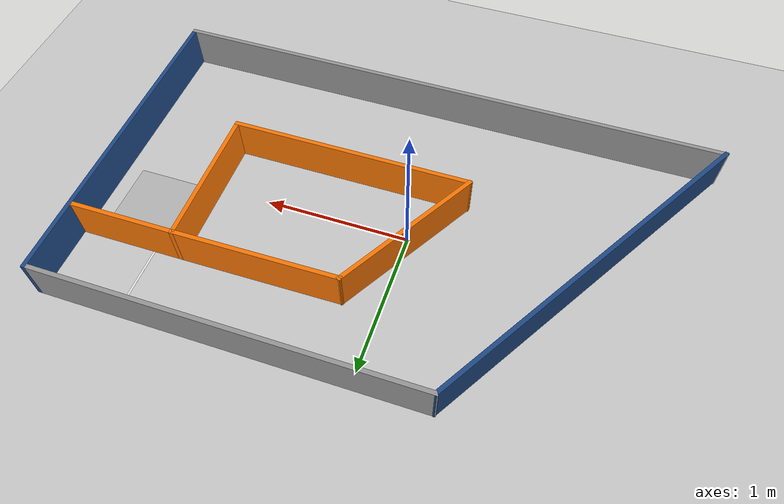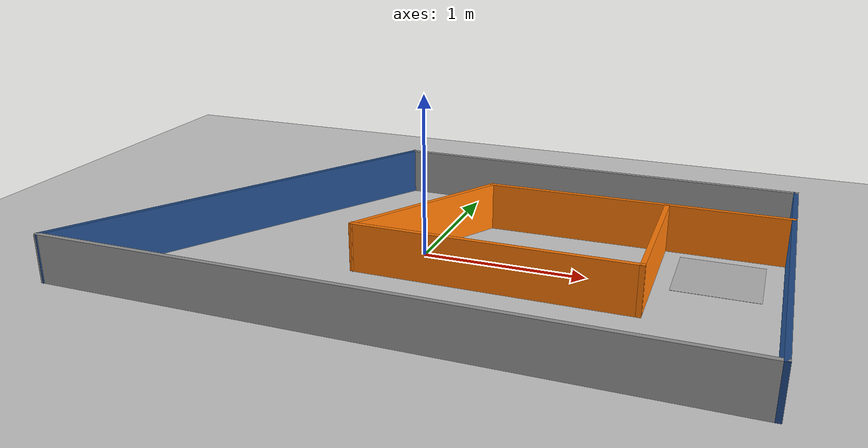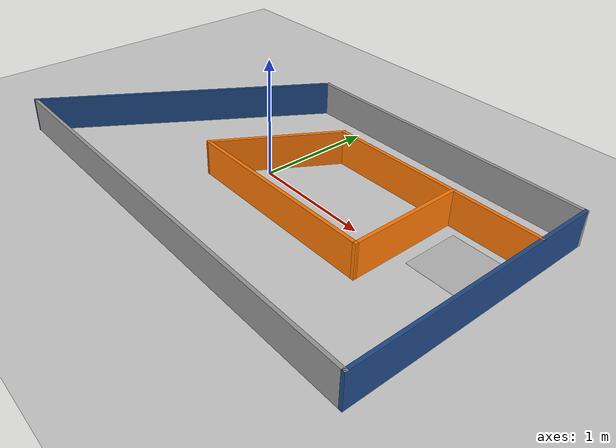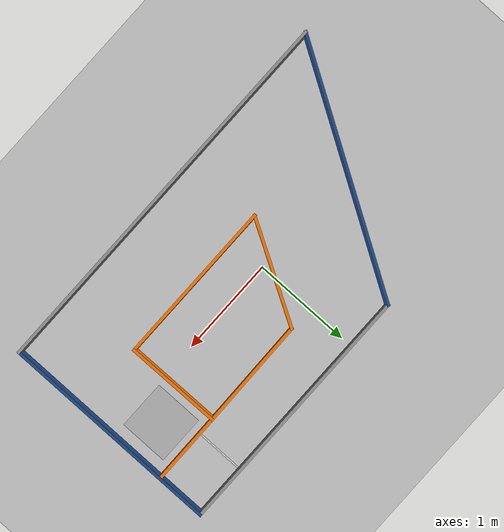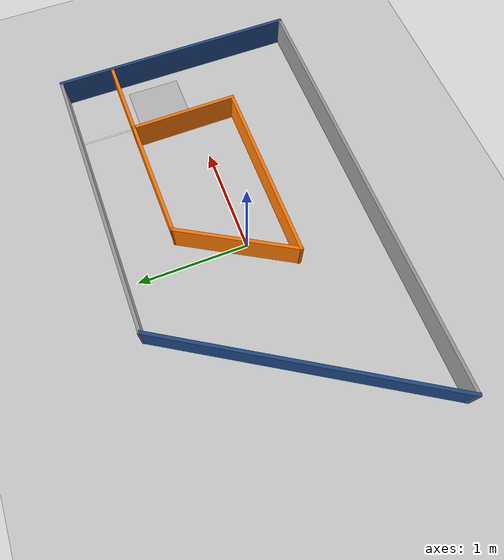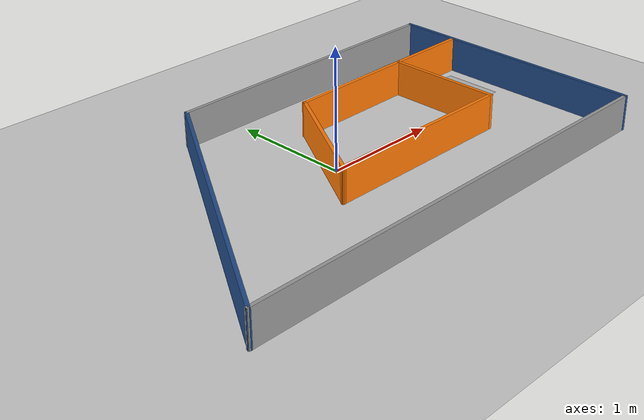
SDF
<sdf version="1.7">
 <world name="round1">
  <light name="sun" type="directional">
   <pose>0 0 10 0 -0 0</pose>
   <diffuse>0.8 0.8 0.8 1</diffuse>
   <specular>0.2 0.2 0.2 1</specular>
   <attenuation>
    <range>1000</range>
    <constant>0.9</constant>
    <linear>0.01</linear>
    <quadratic>0.001</quadratic>
   </attenuation>
   <direction>-0.5 0.1 -0.9</direction>
   <spot><inner_angle>0</inner_angle><outer_angle>0</outer_angle><falloff>0</falloff></spot>
  </light>
  <model name="ground_plane">
   <static>1</static>
   <link name="link">
    <collision name="collision">
     <geometry><plane><normal>0 0 1</normal><size>100 100</size></plane></geometry>
     <surface>
      <contact><collide_bitmask>65535</collide_bitmask></contact>
      <friction><ode><mu>100</mu><mu2>50</mu2></ode></friction>
     </surface>
    </collision>
    <visual name="visual">
     <cast_shadows>0</cast_shadows>
     <geometry><plane><normal>0 0 1</normal><size>100 100</size></plane></geometry>
     <material>
      <script><uri>file://media/materials/scripts/gazebo.material</uri><name>Gazebo/Grey</name></script>
     </material>
    </visual>
   </link>
  </model>
  <model name="r1map">
   <pose>0.099204 -0.027 0 0 -0 0</pose>
   <link name="Wall_0">
    <collision name="Wall_0_Collision">
     <geometry><box><size>4 0.03 0.3</size></box></geometry>
     <pose>0 0 0.15 0 -0 0</pose>
    </collision>
    <visual name="Wall_0_Visual">
     <pose>0 0 0.15 0 -0 0</pose>
     <geometry><box><size>4 0.03 0.3</size></box></geometry>
     <material>
      <script><uri>file://media/materials/scripts/gazebo.material</uri><name>Gazebo/Grey</name></script>
      <ambient>1 1 1 1</ambient>
     </material>
     <meta><layer>0</layer></meta>
    </visual>
    <pose>0.002796 -1.125 0 0 -0 0</pose>
   </link>
   <link name="Wall_11">
    <collision name="Wall_11_Collision">
     <geometry><box><size>0.996474 0.03 0.3</size></box></geometry>
     <pose>0 0 0.15 0 -0 0</pose>
    </collision>
    <visual name="Wall_11_Visual">
     <pose>0 0 0.15 0 -0 0</pose>
     <geometry><box><size>0.996474 0.03 0.3</size></box></geometry>
     <material>
      <script><uri>file://media/materials/scripts/gazebo.material</uri><name>Gazebo/Grey</name></script>
      <ambient>0.996078 0.47451 0.0196078 1</ambient>
     </material>
     <meta><layer>0</layer></meta>
    </visual>
    <pose>1.2608 0.137 0 0 -0 -1.56458</pose>
   </link>
   <link name="Wall_13">
    <collision name="Wall_13_Collision">
     <geometry><box><size>1.699 0.03 0.3</size></box></geometry>
     <pose>0 0 0.15 0 -0 0</pose>
    </collision>
    <visual name="Wall_13_Visual">
     <pose>0 0 0.15 0 -0 0</pose>
     <geometry><box><size>1.699 0.03 0.3</size></box></geometry>
     <material>
      <script><uri>file://media/materials/scripts/gazebo.material</uri><name>Gazebo/Grey</name></script>
      <ambient>0.996078 0.47451 0.0196078 1</ambient>
     </material>
     <meta><layer>0</layer></meta>
    </visual>
    <pose>0.429296 -0.346 0 0 -0 3.14159</pose>
   </link>
   <link name="Wall_18">
    <collision name="Wall_18_Collision">
     <geometry><box><size>1.1302 0.03 0.3</size></box></geometry>
     <pose>0 0 0.15 0 -0 0</pose>
    </collision>
    <visual name="Wall_18_Visual">
     <pose>0 0 0.15 0 -0 0</pose>
     <geometry><box><size>1.1302 0.03 0.3</size></box></geometry>
     <material>
      <script><uri>file://media/materials/scripts/gazebo.material</uri><name>Gazebo/Grey</name></script>
      <ambient>0.996078 0.47451 0.0196078 1</ambient>
     </material>
     <meta><layer>0</layer></meta>
    </visual>
    <pose>-0.130204 0.1305 0 0 -0 1.04737</pose>
   </link>
   <link name="Wall_2">
    <collision name="Wall_2_Collision">
     <geometry><box><size>2.28003 0.03 0.3</size></box></geometry>
     <pose>0 0 0.15 0 -0 0</pose>
    </collision>
    <visual name="Wall_2_Visual">
     <pose>0 0 0.15 0 -0 0</pose>
     <geometry><box><size>2.28003 0.03 0.3</size></box></geometry>
     <material>
      <script><uri>file://media/materials/scripts/gazebo.material</uri><name>Gazebo/Grey</name></script>
      <ambient>0.12549 0.290196 0.529412 1</ambient>
     </material>
     <meta><layer>0</layer></meta>
    </visual>
    <pose>1.9878 8e-06 0 0 -0 1.5708</pose>
   </link>
   <link name="Wall_20">
    <collision name="Wall_20_Collision">
     <geometry><box><size>1.14268 0.03 0.3</size></box></geometry>
     <pose>0 0 0.15 0 -0 0</pose>
    </collision>
    <visual name="Wall_20_Visual">
     <pose>0 0 0.15 0 -0 0</pose>
     <geometry><box><size>1.14268 0.03 0.3</size></box></geometry>
     <material>
      <script><uri>file://media/materials/scripts/gazebo.material</uri><name>Gazebo/Grey</name></script>
      <ambient>0.996078 0.47451 0.0196078 1</ambient>
     </material>
     <meta><layer>0</layer></meta>
    </visual>
    <pose>0.701296 0.6135 0 0 -0 0.01168</pose>
   </link>
   <link name="Wall_22">
    <collision name="Wall_22_Collision">
     <geometry><box><size>2.66419 0.03 0.3</size></box></geometry>
     <pose>0 0 0.15 0 -0 0</pose>
    </collision>
    <visual name="Wall_22_Visual">
     <pose>0 0 0.15 0 -0 0</pose>
     <geometry><box><size>2.66419 0.03 0.3</size></box></geometry>
     <material>
      <script><uri>file://media/materials/scripts/gazebo.material</uri><name>Gazebo/Grey</name></script>
      <ambient>0.12549 0.290196 0.529412 1</ambient>
     </material>
     <meta><layer>0</layer></meta>
    </visual>
    <pose>-1.2972 -0 0 0 -0 -2.11773</pose>
   </link>
   <link name="Wall_4">
    <collision name="Wall_4_Collision">
     <geometry><box><size>2.63 0.03 0.3</size></box></geometry>
     <pose>0 0 0.15 0 -0 0</pose>
    </collision>
    <visual name="Wall_4_Visual">
     <pose>0 0 0.15 0 -0 0</pose>
     <geometry><box><size>2.63 0.03 0.3</size></box></geometry>
     <material>
      <script><uri>file://media/materials/scripts/gazebo.material</uri><name>Gazebo/Grey</name></script>
      <ambient>1 1 1 1</ambient>
     </material>
     <meta><layer>0</layer></meta>
    </visual>
    <pose>0.687796 1.12501 0 0 -0 -3.14159</pose>
   </link>
   <link name="Wall_9">
    <collision name="Wall_9_Collision">
     <geometry><box><size>0.756409 0.03 0.3</size></box></geometry>
     <pose>0 0 0.15 0 -0 0</pose>
    </collision>
    <visual name="Wall_9_Visual">
     <pose>0 0 0.15 0 -0 0</pose>
     <geometry><box><size>0.756409 0.03 0.3</size></box></geometry>
     <material>
      <script><uri>file://media/materials/scripts/gazebo.material</uri><name>Gazebo/Grey</name></script>
      <ambient>0.996078 0.47451 0.0196078 1</ambient>
     </material>
     <meta><layer>0</layer></meta>
    </visual>
    <pose>1.6208 0.622 0 0 -0 -3.13608</pose>
   </link>
   <static>1</static>
  </model>
  <gravity>0 0 -9.8</gravity>
  <magnetic_field>6e-06 2.3e-05 -4.2e-05</magnetic_field>
  <atmosphere type="adiabatic"/>
  <physics type="ode">
   <max_step_size>0.001</max_step_size>
   <real_time_factor>1</real_time_factor>
   <real_time_update_rate>1000</real_time_update_rate>
  </physics>
  <scene><ambient>0.4 0.4 0.4 1</ambient><background>0.7 0.7 0.7 1</background><shadows>1</shadows></scene>
  <spherical_coordinates>
   <surface_model>EARTH_WGS84</surface_model>
   <latitude_deg>0</latitude_deg>
   <longitude_deg>0</longitude_deg>
   <elevation>0</elevation>
   <heading_deg>0</heading_deg>
  </spherical_coordinates>
  <model name="19th_start">
   <static>1</static>
   <link name="link">
    <collision name="collision">
     <geometry><box><size>0.5 0.5 0.001</size><normal>0 0 1</normal></box></geometry>
     <surface><friction><ode><mu>100</mu><mu2>50</mu2></ode></friction></surface>
    </collision>
    <visual name="visual">
     <cast_shadows>0</cast_shadows>
     <geometry><box><size>0.5 0.5 0.001</size><normal>0 0 1</normal></box></geometry>
     <material>
      <script>
       <uri>model://19th_ros_start/materials/scripts</uri>
       <uri>model://19th_ros_start/materials/textures</uri>
       <name>qr_position2_mat</name>
      </script>
     </material>
    </visual>
   </link>
   <pose>1.71989 0.264505 0 0 -0 1.5707</pose>
  </model>
  <model name="white_line">
   <static>1</static>
   <link name="link">
    <collision name="collision">
     <geometry><box><size>0.5 0.015 0.0001</size><normal>0 0 1</normal></box></geometry>
     <surface><friction><ode><mu>100</mu><mu2>50</mu2></ode></friction></surface>
    </collision>
    <visual name="visual">
     <geometry><box><size>0.5 0.015 0.0001</size><normal>0 0 1</normal></box></geometry>
     <material>
      <script>
       <uri>model://white_line/materials/scripts</uri>
       <uri>model://white_line/materials/textures</uri>
       <name>white_line</name>
      </script>
     </material>
    </visual>
   </link>
   <pose>1.55259 0.850504 0 0 0 -1.5707</pose>
  </model>
 </world>
</sdf>
